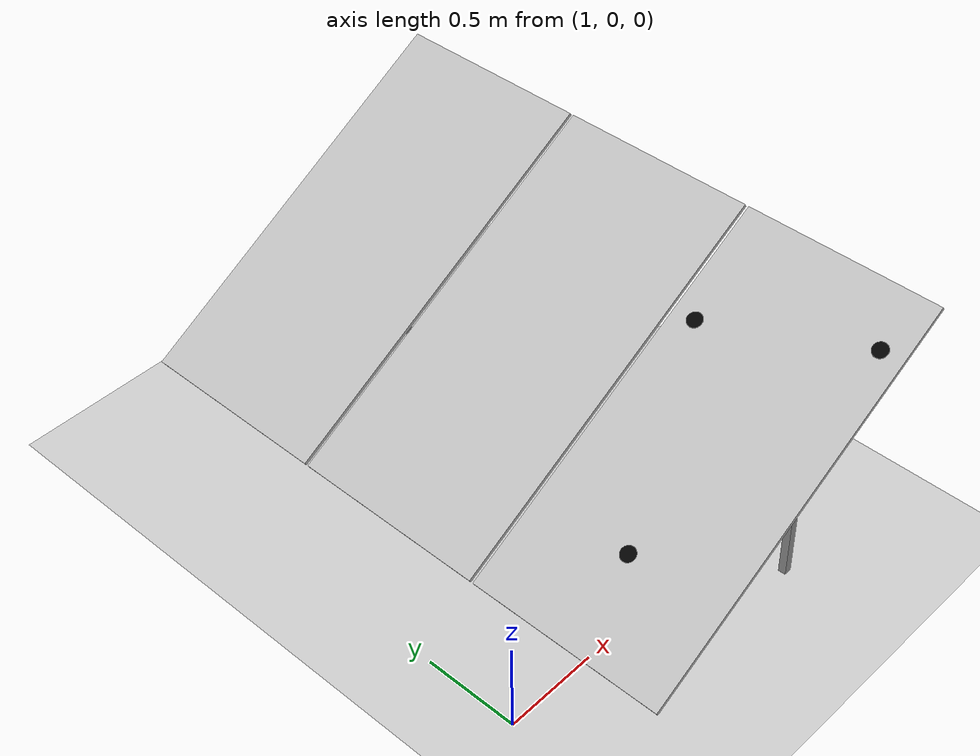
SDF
<sdf version="1.7">
 <world name="default">
  <light name="sun" type="directional">
   <pose>0 0 10 0 -0 0</pose>
   <diffuse>0.8 0.8 0.8 1</diffuse>
   <specular>0.2 0.2 0.2 1</specular>
   <attenuation>
    <range>1000</range>
    <constant>0.9</constant>
    <linear>0.01</linear>
    <quadratic>0.001</quadratic>
   </attenuation>
   <direction>-0.5 0.1 -0.9</direction>
   <spot><inner_angle>0</inner_angle><outer_angle>0</outer_angle><falloff>0</falloff></spot>
  </light>
  <model name="ground_plane">
   <static>1</static>
   <link name="link">
    <collision name="collision">
     <geometry><plane><normal>0 0 1</normal><size>100 100</size></plane></geometry>
     <surface>
      <contact><collide_bitmask>65535</collide_bitmask></contact>
      <friction><ode><mu>100</mu><mu2>50</mu2></ode></friction>
     </surface>
    </collision>
    <visual name="visual">
     <cast_shadows>0</cast_shadows>
     <geometry><plane><normal>0 0 1</normal><size>100 100</size></plane></geometry>
     <material>
      <script><uri>file://media/materials/scripts/gazebo.material</uri><name>Gazebo/Grey</name></script>
     </material>
    </visual>
   </link>
  </model>
  <gravity>0 0 -9.8</gravity>
  <magnetic_field>6e-06 2.3e-05 -4.2e-05</magnetic_field>
  <atmosphere type="adiabatic"/>
  <physics type="ode">
   <max_step_size>0.001</max_step_size>
   <real_time_factor>1</real_time_factor>
   <real_time_update_rate>1000</real_time_update_rate>
  </physics>
  <scene><ambient>0.4 0.4 0.4 1</ambient><background>0.7 0.7 0.7 1</background><shadows>1</shadows></scene>
  <spherical_coordinates>
   <surface_model>EARTH_WGS84</surface_model>
   <latitude_deg>0</latitude_deg>
   <longitude_deg>0</longitude_deg>
   <elevation>0</elevation>
   <heading_deg>0</heading_deg>
  </spherical_coordinates>
  <model name="solarpanel">
   <link name="link_2">
    <inertial>
     <mass>1</mass>
     <inertia>
      <ixx>0.166667</ixx>
      <ixy>0</ixy>
      <ixz>0</ixz>
      <iyy>0.166667</iyy>
      <iyz>0</iyz>
      <izz>0.166667</izz>
     </inertia>
    </inertial>
    <pose>6.8548 -3.43332 1.19279 0 -0 0</pose>
    <visual name="red_point">
     <pose>0.5 1 0.08 0 0.5 0</pose>
     <geometry><cylinder><radius>0.04</radius><length>0.005</length></cylinder></geometry>
     <material>
      <ambient>1 0 0 1</ambient>
      <diffuse>0 0 0 1</diffuse>
      <specular>0 0 0 1</specular>
      <emissive>1 0 0 1</emissive>
     </material>
    </visual>
    <visual name="red_point2">
     <pose>-0.65 1.4 0.73 0 0.5 0</pose>
     <geometry><cylinder><radius>0.04</radius><length>0.005</length></cylinder></geometry>
     <material>
      <ambient>1 0 0 1</ambient>
      <diffuse>0 0 0 1</diffuse>
      <specular>0 0 0 1</specular>
      <emissive>1 0 0 1</emissive>
     </material>
    </visual>
    <visual name="red_point3">
     <pose>-0.4 0.6 0.59 0 0.5 0</pose>
     <geometry><cylinder><radius>0.04</radius><length>0.005</length></cylinder></geometry>
     <material>
      <ambient>1 0 0 1</ambient>
      <diffuse>0 0 0 1</diffuse>
      <specular>0 0 0 1</specular>
      <emissive>1 0 0 1</emissive>
     </material>
    </visual>
    <visual name="ModelPreview_0::link_2::visual_4">
     <pose>0.365 1.25 -0.21 0 -0 0</pose>
     <geometry><box><size>0.04 0.04 0.68</size></box></geometry>
     <material>
      <lighting>1</lighting>
      <script><uri>file://media/materials/scripts/gazebo.material</uri><name>Gazebo/Grey</name></script>
      <shader type="pixel"><normal_map>__default__</normal_map></shader>
      <ambient>0.3 0.3 0.3 1</ambient>
      <diffuse>0.7 0.7 0.7 1</diffuse>
      <specular>0.01 0.01 0.01 1</specular>
      <emissive>0 0 0 1</emissive>
     </material>
    </visual>
    <visual name="ModelPreview_0::link_2::visual_2">
     <pose>0.365 -1.25 -0.21 0 -0 0</pose>
     <geometry><box><size>0.04 0.04 0.68</size></box></geometry>
     <material>
      <lighting>1</lighting>
      <script><uri>file://media/materials/scripts/gazebo.material</uri><name>Gazebo/Grey</name></script>
      <shader type="pixel"><normal_map>__default__</normal_map></shader>
      <ambient>0.3 0.3 0.3 1</ambient>
      <diffuse>0.7 0.7 0.7 1</diffuse>
      <specular>0.01 0.01 0.01 1</specular>
      <emissive>0 0 0 1</emissive>
     </material>
    </visual>
    <visual name="visual">
     <pose>-0.365 -1.25 0 0 -0 0</pose>
     <geometry><box><size>0.04 0.04 1.1</size></box></geometry>
     <material>
      <lighting>1</lighting>
      <script><uri>file://media/materials/scripts/gazebo.material</uri><name>Gazebo/Grey</name></script>
      <shader type="pixel"><normal_map>__default__</normal_map></shader>
      <ambient>0.3 0.3 0.3 1</ambient>
      <diffuse>0.7 0.7 0.7 1</diffuse>
      <specular>0.01 0.01 0.01 1</specular>
      <emissive>0 0 0 1</emissive>
     </material>
    </visual>
    <visual name="ModelPreview_0::link_2::visual_1">
     <pose>-0.365 1.25 0 0 -0 0</pose>
     <geometry><box><size>0.04 0.04 1.1</size></box></geometry>
     <material>
      <lighting>1</lighting>
      <script><uri>file://media/materials/scripts/gazebo.material</uri><name>Gazebo/Grey</name></script>
      <shader type="pixel"><normal_map>__default__</normal_map></shader>
      <ambient>0.3 0.3 0.3 1</ambient>
      <diffuse>0.7 0.7 0.7 1</diffuse>
      <specular>0.01 0.01 0.01 1</specular>
      <emissive>0 0 0 1</emissive>
     </material>
    </visual>
    <visual name="ModelPreview_0::link_2::visual_6">
     <pose>0 -1.12 0.35 0 -1.06 0</pose>
     <geometry><box><size>0.02 1.04 2.102</size></box></geometry>
     <material>
      <script>
       <uri>model://panelsolar/materials/scripts</uri>
       <uri>model://panelsolar/materials/textures</uri>
       <name>solarMat/Diffuse</name>
      </script>
     </material>
    </visual>
    <visual name="ModelPreview_0::link_2::visual_7">
     <pose>0 -0.06 0.35 0 -1.06 0</pose>
     <geometry><box><size>0.02 1.04 2.102</size></box></geometry>
     <material>
      <script>
       <uri>model://panelsolar/materials/scripts</uri>
       <uri>model://panelsolar/materials/textures</uri>
       <name>solarMat/Diffuse</name>
      </script>
     </material>
    </visual>
    <visual name="ModelPreview_0::link_2::visual_8">
     <pose>0 1 0.35 0 -1.06 0</pose>
     <geometry><box><size>0.02 1.04 2.102</size></box></geometry>
     <material>
      <script>
       <uri>model://panelsolar/materials/scripts</uri>
       <uri>model://panelsolar/materials/textures</uri>
       <name>solarMat/Diffuse</name>
      </script>
     </material>
    </visual>
    <collision name="collision">
     <geometry><box><size>0.727 2.5 1.1</size></box></geometry>
     <surface>
      <friction>
       <ode><mu>1</mu><mu2>1</mu2><fdir1>0 0 0</fdir1><slip1>0</slip1><slip2>0</slip2></ode>
       <torsional>
        <coefficient>1</coefficient>
        <patch_radius>0</patch_radius>
        <surface_radius>0</surface_radius>
        <use_patch_radius>1</use_patch_radius>
        <ode><slip>0</slip></ode>
       </torsional>
      </friction>
      <bounce><restitution_coefficient>0</restitution_coefficient><threshold>1e+06</threshold></bounce>
      <contact>
       <collide_without_contact>0</collide_without_contact>
       <collide_without_contact_bitmask>1</collide_without_contact_bitmask>
       <collide_bitmask>1</collide_bitmask>
       <ode>
        <soft_cfm>0</soft_cfm>
        <soft_erp>0.2</soft_erp>
        <kp>1e+13</kp>
        <kd>1</kd>
        <max_vel>0.01</max_vel>
        <min_depth>0</min_depth>
       </ode>
       <bullet>
        <split_impulse>1</split_impulse>
        <split_impulse_penetration_threshold>-0.01</split_impulse_penetration_threshold>
        <soft_cfm>0</soft_cfm>
        <soft_erp>0.2</soft_erp>
        <kp>1e+13</kp>
        <kd>1</kd>
       </bullet>
      </contact>
     </surface>
    </collision>
   </link>
   <static>0</static>
   <pose>9 -2.50039 -0.642791 -0 -0 -3.14</pose>
  </model>
 </world>
</sdf>
